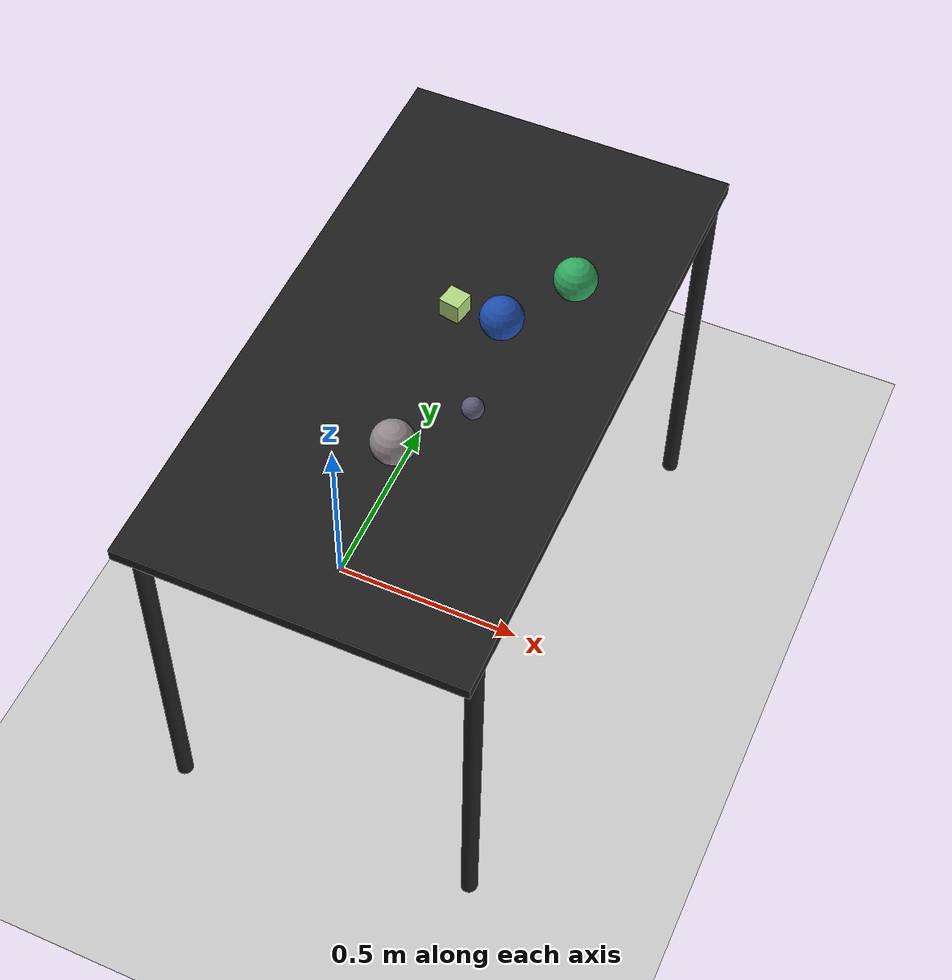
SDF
<?xml version="1.0" ?>
<sdf version="1.6">
  <world name="arm_world">
    <plugin filename="gz-sim-physics-system" name="gz::sim::systems::Physics">
      <engine>
        <filename>libgz-physics-bullet-featherstone-plugin.so</filename>
      </engine>
    </plugin>
    <plugin filename="gz-sim-user-commands-system" name="gz::sim::systems::UserCommands"/>
    <plugin filename="gz-sim-scene-broadcaster-system" name="gz::sim::systems::SceneBroadcaster"/>
    <plugin filename="gz-sim-sensors-system" name="gz::sim::systems::Sensors">
      <render_engine>ogre2</render_engine>
    </plugin>
    <gravity>0.0 0.0 -9.8</gravity>
    <scene>
      <shadows>false</shadows>
    </scene>
    <gui>
      <camera name="user_camera">
        <pose>0.75 -0.75 1.4 0 0.29 2.21</pose>
      </camera>
    </gui>
    <include>
      <uri>https://fuel.gazebosim.org/1.0/OpenRobotics/models/Sun</uri>
    </include>
    <model name="table">
      <static>true</static>
      <include>
        <uri>model://table</uri>
      </include>
      <pose>0.29 0 0 0 0 1.5708</pose>
    </model>
    <model name="ground_plane">
      <static>true</static>
      <link name="link">
        <collision name="collision">
          <geometry>
            <plane>
              <normal>0 0 1</normal>
            </plane>
          </geometry>
          <surface>
            <friction>
              <ode>
                <mu>1.0</mu>
                <mu2>1.0</mu2>
              </ode>
            </friction>
          </surface>
        </collision>
        <visual name="visual">
          <geometry>
            <plane>
              <normal>0 0 1</normal>
              <size>100 100</size>
            </plane>
          </geometry>
          <material>
            <ambient>0.8 0.8 0.8 1</ambient>
            <diffuse>0.8 0.8 0.8 1</diffuse>
            <specular>0.8 0.8 0.8 1</specular>
          </material>
        </visual>
      </link>
    </model>
    <model name="sphere_l_0">
      <pose>0.486 0.294 1.05 0 0 5.47</pose>
      <link name="sphere_l_0_link">
        <collision name="sphere_l_0_collision">
          <geometry>
            <sphere>
              <radius>0.05</radius>
            </sphere>
          </geometry>
        </collision>
        <visual name="sphere_l_0_visual">
          <geometry>
            <sphere>
              <radius>0.05</radius>
            </sphere>
          </geometry>
          <material>
            <ambient>0.2 0.67 0.38 1</ambient>
            <diffuse>0.2 0.67 0.38 1</diffuse>
          </material>
        </visual>
        <velocity_decay>
          <linear>1</linear>
          <angular>1</angular>
        </velocity_decay>
      </link>
    </model>
    <model name="sphere_m_1">
      <pose>0.425 -0.135 1.05 0 0 0.38</pose>
      <link name="sphere_m_1_link">
        <collision name="sphere_m_1_collision">
          <geometry>
            <sphere>
              <radius>0.025</radius>
            </sphere>
          </geometry>
        </collision>
        <visual name="sphere_m_1_visual">
          <geometry>
            <sphere>
              <radius>0.025</radius>
            </sphere>
          </geometry>
          <material>
            <ambient>0.36 0.36 0.49 1</ambient>
            <diffuse>0.36 0.36 0.49 1</diffuse>
          </material>
        </visual>
        <velocity_decay>
          <linear>1</linear>
          <angular>1</angular>
        </velocity_decay>
      </link>
    </model>
    <model name="sphere_l_2">
      <pose>0.381 0.122 1.05 0 0 1.71</pose>
      <link name="sphere_l_2_link">
        <collision name="sphere_l_2_collision">
          <geometry>
            <sphere>
              <radius>0.05</radius>
            </sphere>
          </geometry>
        </collision>
        <visual name="sphere_l_2_visual">
          <geometry>
            <sphere>
              <radius>0.05</radius>
            </sphere>
          </geometry>
          <material>
            <ambient>0.12 0.31 0.69 1</ambient>
            <diffuse>0.12 0.31 0.69 1</diffuse>
          </material>
        </visual>
        <velocity_decay>
          <linear>1</linear>
          <angular>1</angular>
        </velocity_decay>
      </link>
    </model>
    <model name="sphere_l_3">
      <pose>0.31 -0.286 1.05 0 0 4.12</pose>
      <link name="sphere_l_3_link">
        <collision name="sphere_l_3_collision">
          <geometry>
            <sphere>
              <radius>0.05</radius>
            </sphere>
          </geometry>
        </collision>
        <visual name="sphere_l_3_visual">
          <geometry>
            <sphere>
              <radius>0.05</radius>
            </sphere>
          </geometry>
          <material>
            <ambient>0.58 0.54 0.55 1</ambient>
            <diffuse>0.58 0.54 0.55 1</diffuse>
          </material>
        </visual>
        <velocity_decay>
          <linear>1</linear>
          <angular>1</angular>
        </velocity_decay>
      </link>
    </model>
    <model name="cube_m_4">
      <pose>0.272 0.115 1.05 0 0 2.96</pose>
      <link name="cube_m_4_link">
        <collision name="cube_m_4_collision">
          <geometry>
            <box>
              <size>0.05 0.05 0.05</size>
            </box>
          </geometry>
        </collision>
        <visual name="cube_m_4_visual">
          <geometry>
            <box>
              <size>0.05 0.05 0.05</size>
            </box>
          </geometry>
          <material>
            <ambient>0.7 0.86 0.49 1</ambient>
            <diffuse>0.7 0.86 0.49 1</diffuse>
          </material>
        </visual>
        <velocity_decay>
          <linear>1</linear>
          <angular>1</angular>
        </velocity_decay>
      </link>
    </model>
  </world>
</sdf>

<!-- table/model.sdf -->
<sdf version="1.5">
  <model name="table">
    <static>true</static>
    <link name="link">
      <collision name="surface">
        <pose>0 0 1.0 0 0 0</pose>
        <geometry>
          <box>
            <size>1.5 0.8 0.03</size>
          </box>
        </geometry>
        <surface>
          <friction>
            <ode>
              <mu>0.6</mu>
              <mu2>0.6</mu2>
            </ode>
          </friction>
        </surface>
      </collision>
      <visual name="surface">
        <pose>0 0 1.0 0 0 0</pose>
        <geometry>
          <box>
            <size>1.5 0.8 0.03</size>
          </box>
        </geometry>
        <material>
          <script>
            <uri>file://media/materials/scripts/gazebo.material</uri>
            <name>Gazebo/Black</name>
          </script>
        </material>
      </visual>
      <collision name="front_left_leg">
        <pose>0.68 0.38 0.5 0 0 0</pose>
        <geometry>
          <cylinder>
            <radius>0.02</radius>
            <length>1.0</length>
          </cylinder>
        </geometry>
      </collision>
      <visual name="front_left_leg">
        <pose>0.68 0.38 0.5 0 0 0</pose>
        <geometry>
          <cylinder>
            <radius>0.02</radius>
            <length>1.0</length>
          </cylinder>
        </geometry>
        <material>
          <script>
            <uri>file://media/materials/scripts/gazebo.material</uri>
            <name>Gazebo/Black</name>
          </script>
        </material>
      </visual>
      <collision name="front_right_leg">
        <pose>0.68 -0.38 0.5 0 0 0</pose>
        <geometry>
          <cylinder>
            <radius>0.02</radius>
            <length>1.0</length>
          </cylinder>
        </geometry>
      </collision>
      <visual name="front_right_leg">
        <pose>0.68 -0.38 0.5 0 0 0</pose>
        <geometry>
          <cylinder>
            <radius>0.02</radius>
            <length>1.0</length>
          </cylinder>
        </geometry>
        <material>
          <script>
            <uri>file://media/materials/scripts/gazebo.material</uri>
            <name>Gazebo/Black</name>
          </script>
        </material>
      </visual>
      <collision name="back_right_leg">
        <pose>-0.68 -0.38 0.5 0 0 0</pose>
        <geometry>
          <cylinder>
            <radius>0.02</radius>
            <length>1.0</length>
          </cylinder>
        </geometry>
      </collision>
      <visual name="back_right_leg">
        <pose>-0.68 -0.38 0.5 0 0 0</pose>
        <geometry>
          <cylinder>
            <radius>0.02</radius>
            <length>1.0</length>
          </cylinder>
        </geometry>
        <material>
          <script>
            <uri>file://media/materials/scripts/gazebo.material</uri>
            <name>Gazebo/Black</name>
          </script>
        </material>
      </visual>
      <collision name="back_left_leg">
        <pose>-0.68 0.38 0.5 0 0 0</pose>
        <geometry>
          <cylinder>
            <radius>0.02</radius>
            <length>1.0</length>
          </cylinder>
        </geometry>
      </collision>
      <visual name="back_left_leg">
        <pose>-0.68 0.38 0.5 0 0 0</pose>
        <geometry>
          <cylinder>
            <radius>0.02</radius>
            <length>1.0</length>
          </cylinder>
        </geometry>
        <material>
          <script>
            <uri>file://media/materials/scripts/gazebo.material</uri>
            <name>Gazebo/Black</name>
          </script>
        </material>
      </visual>
    </link>
  </model>
</sdf>
